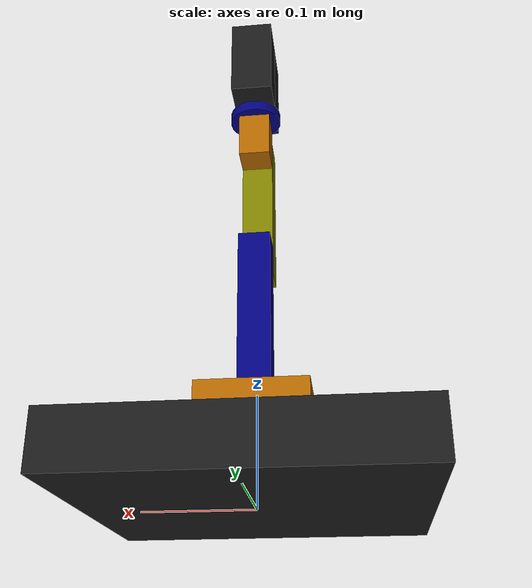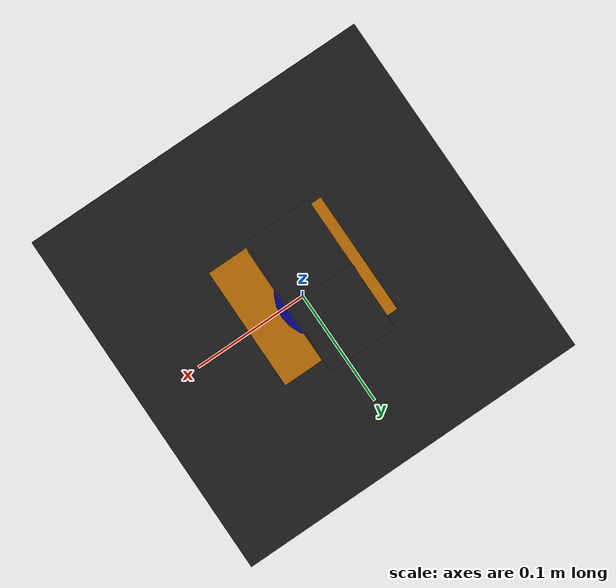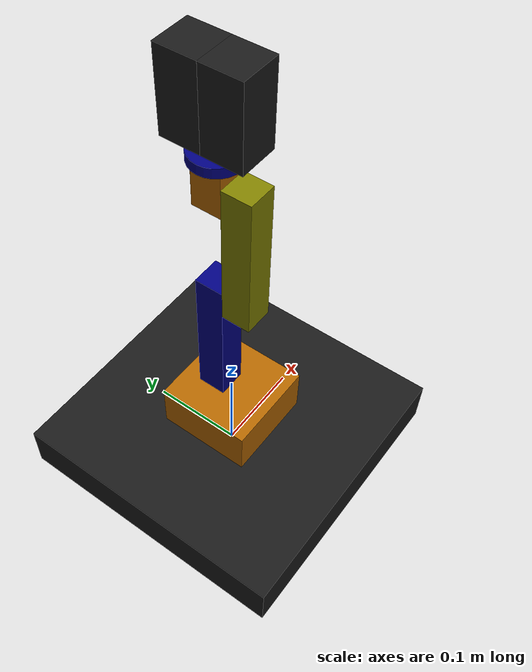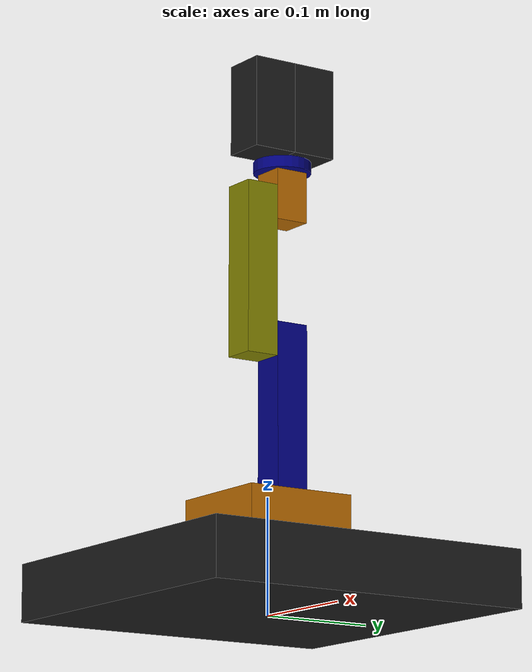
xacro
<?xml version="1.0"?>
<robot xmlns:xacro="http://www.ros.org/wiki/xacro" name="iki">
    <xacro:include filename="common_properties.xacro" />
    <xacro:include filename="arm_model.xacro" />
    <xacro:include filename="arm_gazebo.xacro" />
    <xacro:include filename="ros2_control.xacro" />
</robot>

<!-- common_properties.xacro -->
<robot xmlns:xacro="https://wiki.ros.org/xacro">

    <material name="green">
        <color rgba="0 .5 0 1" />
    </material>
    <material name="blue">
        <color rgba="0 0 0.5 1" />
    </material>
    <material name="grey">
        <color rgba="0.1 0.1 0.1 1" />
    </material>
    <material name="yellow">
        <color rgba="0.5 0.5 0.0 1" />
    </material>
    <material name="orange">
        <color rgba="0.7 0.4 0.0 1" />
    </material>

    <xacro:property name="PI" value="3.14159"/>

    <xacro:macro name="inertia_box" params="m l w h xyz rpy">
        <inertial>
            <origin xyz="${xyz}" rpy="${rpy}" />
            <mass value="${m}" />
            <inertia ixx="${(m/12)*(h*h + l*l)}" ixy="0" ixz="0"
                iyy="${(m/12)*(w*w + l*l)}" iyz="0"
                izz="${(m/12)*(h*h + w*w)}" />
        </inertial>
    </xacro:macro>

    <xacro:macro name="inertia_cylinder" params="m r h xyz rpy">
        <inertial>
            <origin xzy="${xyz}" rpy="${rpy}" />
            <mass value="${m}" />
            <inertia ixx="${(m/12)*(3*r*r + h*h)}" ixy="0" ixz="0"
                iyy="${(m/12)*(3*r*r + h*h)}" iyz="0"
                izz="${(m/2)*(r*r)}" />
        </inertial>
    </xacro:macro>

    <xacro:macro name="inertia_sphere" params="r m xyz rpy">
        <inertial>
            <origin xzy="${xyz}" rpy="${rpy}" />
            <mass value="${m}" />
            <inertia ixx="${(2/5)*(m * r * r)}" ixy="0" ixz="0"
                iyy="${(2/5)*(m * r * r)}" iyz="0"
                izz="${(2/5)*(m * r * r)}" />
        </inertial>
    </xacro:macro>

</robot>

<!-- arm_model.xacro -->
<robot xmlns:xacro="http://www.ros.org/wiki/xacro">

  <xacro:property name="base_l" value="0.1" />
  <xacro:property name="base_w" value="0.1" />
  <xacro:property name="base_h" value="0.05" />
  <xacro:property name="base_m" value="0.3" />
  <xacro:property name="arm_l" value="0.03" />
  <xacro:property name="arm_w" value="0.03" />
  <xacro:property name="arm_h" value="0.15" />
  <xacro:property name="arm_m" value="0.3" />
  <xacro:property name="wrist_r" value="0.025" />
  <xacro:property name="wrist_l" value="0.01" />
  <xacro:property name="wrist_m" value="0.1" />
  <xacro:property name="gripper_l" value="0.04" />
  <xacro:property name="gripper_w" value="0.04" />
  <xacro:property name="gripper_h" value="0.08" />
  <xacro:property name="gripper_m" value="0.1" />

  <xacro:macro name="default_transmission" params="joint_name">
    <transmission name="transmission_${joint_name}">
      <plugin>transmission_interface/SimpleTransmission</plugin>
      <actuator name="motor_${joint_name}" role="actuator1" />
      <joint name="${joint_name}" role="joint1">
        <mechanical_reduction>1.0</mechanical_reduction>
      </joint>
    </transmission>
  </xacro:macro>

  <link name="static_base_link">
    <visual>
      <geometry>
        <box size="${base_l+0.2} ${base_w+0.2} ${base_h}" />
      </geometry>
      <origin xyz="0 0 ${base_h/2.0}" rpy="0 0 0" />
      <material name="grey" />
    </visual>
    <xacro:inertia_box m="${10*base_m}" l="${base_l}" w="${base_w}" h="${base_h}"
      xyz="0 0 ${-base_h/2.0}" rpy="0 0 0" />
    <collision>
      <origin xyz="0 0 ${base_h/2.0}" rpy="0 0 0" />
      <geometry>
        <box size="${base_l} ${base_w} ${base_h}" />
      </geometry>
    </collision>
  </link>

  <link name="arm_base_link">
    <visual>
      <geometry>
        <box size="${base_l} ${base_w} ${base_h}" />
      </geometry>
      <origin xyz="0 0 ${base_h/2.0}" rpy="0 0 0" />
      <material name="orange" />
    </visual>
    <xacro:inertia_box m="${base_m}" l="${base_l}" w="${base_w}" h="${base_h}"
      xyz="0 0 ${-base_h/2.0}" rpy="0 0 0" />
    <collision>
      <origin xyz="0 0 ${base_h/2.0}" rpy="0 0 0" />
      <geometry>
        <box size="${base_l} ${base_w} ${base_h}" />
      </geometry>
    </collision>
  </link>

  <joint name="bases_joint" type="revolute">
    <axis xyz="0 0 1" />
    <origin xyz="0 0 ${base_h}" rpy="0 0 0" />
    <limit effort="1000.0" upper="${PI/2.0}" lower="${-PI/2.0}" velocity="0.5" />
    <parent link="static_base_link" />
    <child link="arm_base_link" />
  </joint>

  <xacro:macro name="arm_links" params="prefix color y_offset">
    <link name="${prefix}_link">
      <visual>
        <geometry>
          <box size="${arm_l} ${arm_w} ${arm_h}" />
        </geometry>
        <origin xyz="0 ${y_offset} ${arm_h/2}" rpy="0 0 0"></origin>
        <material name="${color}" />
      </visual>
      <collision>
        <origin xyz="0 0 ${arm_h/2}" rpy="0 0 0"></origin>
        <geometry>
          <box size="${arm_l} ${arm_w} ${arm_h}" />
        </geometry>
      </collision>
      <xacro:inertia_box m="${arm_m}" l="${arm_l}" w="${arm_w}" h="${arm_h}"
        xyz="0 0 ${-arm_h/2.0}" rpy="0 0 0" />
    </link>
  </xacro:macro>

  <xacro:arm_links prefix="arm_1" color="blue" y_offset="0" />

  <joint name="base_arm1_joint" type="revolute">
    <axis xyz="0 1 0" />
    <origin xyz="0 ${arm_w/2} ${base_h}" rpy="0 0 0" />
    <limit effort="1000.0" upper="${PI/2.0}" lower="${-PI/2.0}" velocity="0.5" />
    <parent link="arm_base_link" />
    <child link="arm_1_link" />
  </joint>

  <xacro:arm_links prefix="arm_2" color="yellow" y_offset="${-arm_w/2.0}" />

  <joint name="arm1_arm2_joint" type="revolute">
    <axis xyz="0 1 0" />
    <origin xyz="0 ${-arm_w/2} ${arm_h-0.03}" rpy="0 0 0" />
    <limit effort="1000.0" upper="${PI}" lower="${-PI/2.0}" velocity="0.5" />
    <parent link="arm_1_link" />
    <child link="arm_2_link" />
  </joint>

  <link name="arm_3_link">
    <visual>
      <geometry>
        <box size="${arm_l} ${arm_w} ${arm_h/3}" />
      </geometry>
      <origin xyz="0 0 ${arm_h/6}" rpy="0 0 0"></origin>
      <material name="orange" />
    </visual>
    <collision>
      <origin xyz="0 0 ${arm_h/6}" rpy="0 0 0"></origin>
      <geometry>
        <box size="${arm_l} ${arm_w} ${arm_h/3}" />
      </geometry>
    </collision>
    <xacro:inertia_box m="${arm_m}" l="${arm_l}" w="${arm_w}" h="${arm_h/3}"
      xyz="0 0 ${-arm_h/6.0}" rpy="0 0 0" />
  </link>

  <joint name="arm2_arm3_joint" type="revolute">
    <axis xyz="0 1 0" />
    <origin xyz="0 ${arm_w/2} ${arm_h-0.03}" rpy="0 0 0" />
    <limit effort="1000.0" upper="${PI/2.0}" lower="${-PI/2.0}" velocity="0.5" />
    <parent link="arm_2_link" />
    <child link="arm_3_link" />
  </joint>

  <link name="wrist_link">
    <visual>
      <geometry>
        <cylinder radius="${wrist_r}" length="${wrist_l}" />
      </geometry>
      <origin xyz="0 0 0" rpy="0 0 0" />
      <material name="blue" />
    </visual>
    <collision>
      <origin xyz="0 0 0" rpy="0 0 0" />
      <geometry>
        <cylinder radius="${wrist_r}" length="${wrist_l}" />
      </geometry>
    </collision>
    <xacro:inertia_cylinder m="${arm_m}" h="${wrist_l}" r="${wrist_r}"
      xyz="0 0 ${-arm_h/2.0}" rpy="0 0 0" />
  </link>

  <joint name="arm3_wrist_joint" type="revolute">
    <axis xyz="0 0 1" />
    <origin xyz="0 0 ${arm_h/3}" rpy="0 0 0" />
    <limit effort="1000.0" upper="${PI/2.0}" lower="${-PI/2.0}" velocity="0.5" />
    <parent link="arm_3_link" />
    <child link="wrist_link" />
  </joint>

  <xacro:macro name="gripper_links" params="prefix y_offset">
    <link name="${prefix}_link">
      <visual>
        <geometry>
          <box size="${gripper_l} ${gripper_w} ${gripper_h}" />
        </geometry>
        <origin xyz="0 ${y_offset} ${gripper_h/2}" rpy="0 0 0"></origin>
        <material name="grey" />
      </visual>
      <collision>
        <origin xyz="0 ${y_offset} ${gripper_h/2}" rpy="0 0 0"></origin>
        <geometry>
          <box size="${gripper_l} ${gripper_w} ${gripper_h}" />
        </geometry>
      </collision>
      <xacro:inertia_box m="${gripper_m}" l="${gripper_l}" w="${gripper_w}" h="${gripper_h}"
        xyz="0 0 ${-gripper_h/2.0}" rpy="0 0 0" />
    </link>
  </xacro:macro>

  <xacro:gripper_links prefix="gripper_l" y_offset="${gripper_w/2}" />
  <xacro:gripper_links prefix="gripper_r" y_offset="${-gripper_w/2}" />

  <joint name="wrist_gripr_joint" type="prismatic">
    <axis xyz="0 1 0" />
    <origin xyz="0 0 ${wrist_l}" rpy="0 0 0" />
    <limit effort="1000.0" upper="0" lower="-0.3" velocity="0.5" />
    <parent link="wrist_link" />
    <child link="gripper_r_link" />
    <mimic joint="wrist_gripl_joint" multiplier="-1"/>
  </joint>

  <joint name="wrist_gripl_joint" type="prismatic">
    <axis xyz="0 1 0" />
    <origin xyz="0 0 ${wrist_l}" rpy="0 0 0" />
    <limit effort="1000.0" upper="0.3" lower="0" velocity="0.5" />
    <parent link="wrist_link" />
    <child link="gripper_l_link" />
  </joint>

  <xacro:default_transmission joint_name="bases_joint" />
  <xacro:default_transmission joint_name="base_arm1_joint" />
  <xacro:default_transmission joint_name="arm1_arm2_joint" />
  <xacro:default_transmission joint_name="arm2_arm3_joint" />
  <xacro:default_transmission joint_name="arm3_wrist_joint" />
  <xacro:default_transmission joint_name="wrist_gripl_joint" />

</robot>
